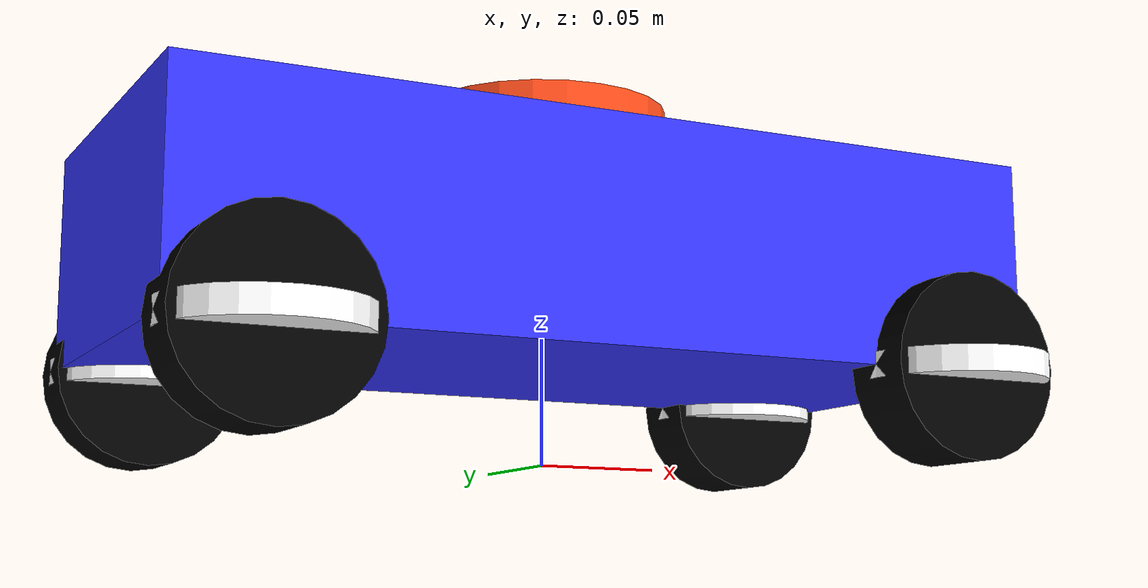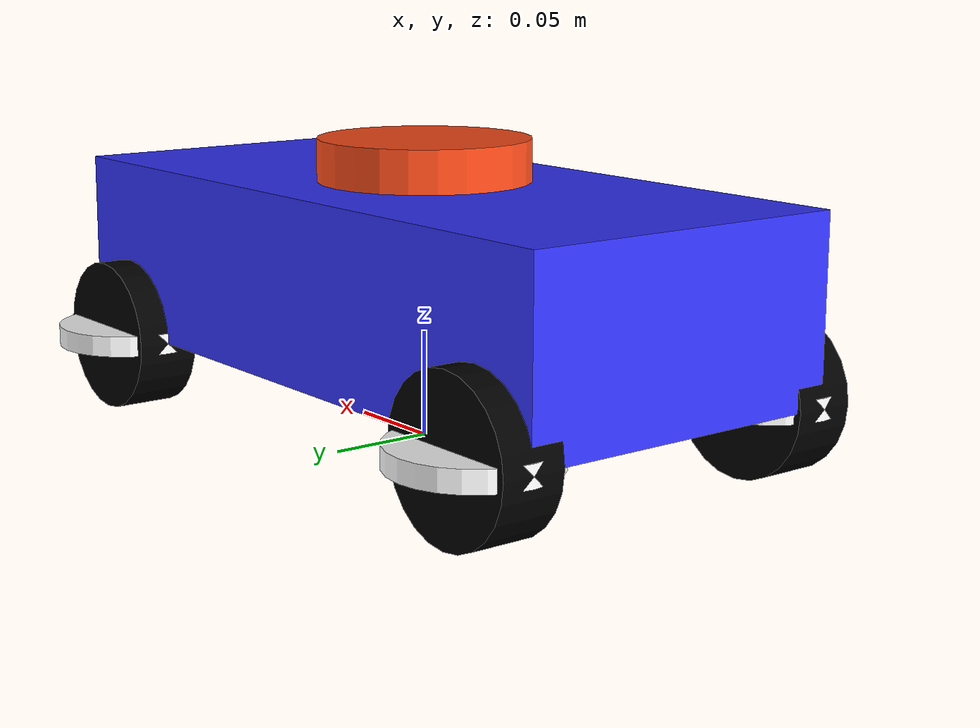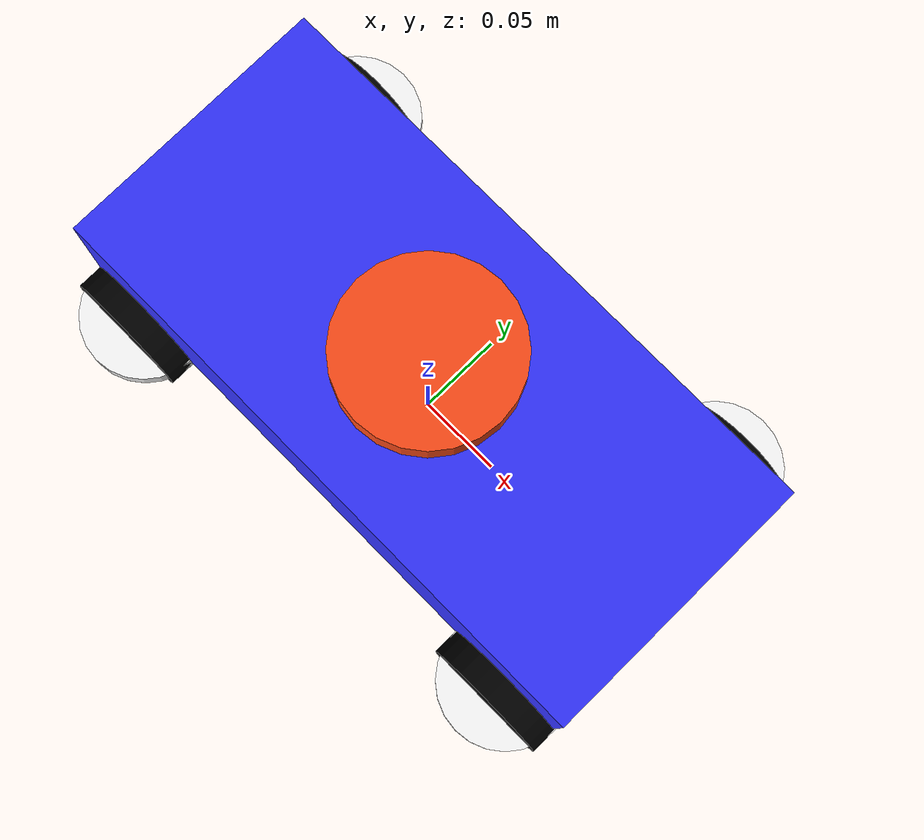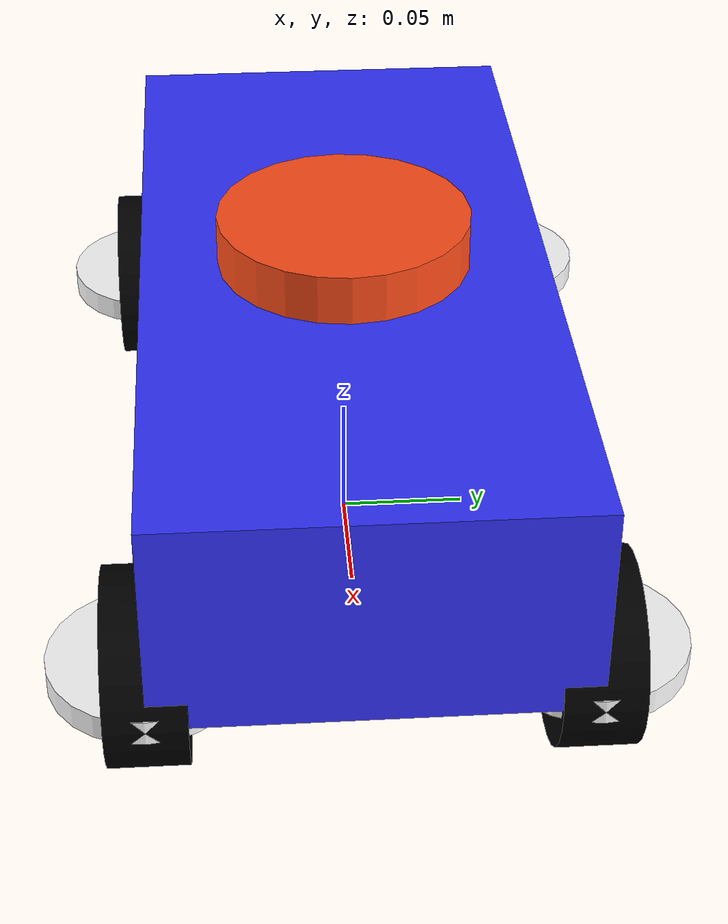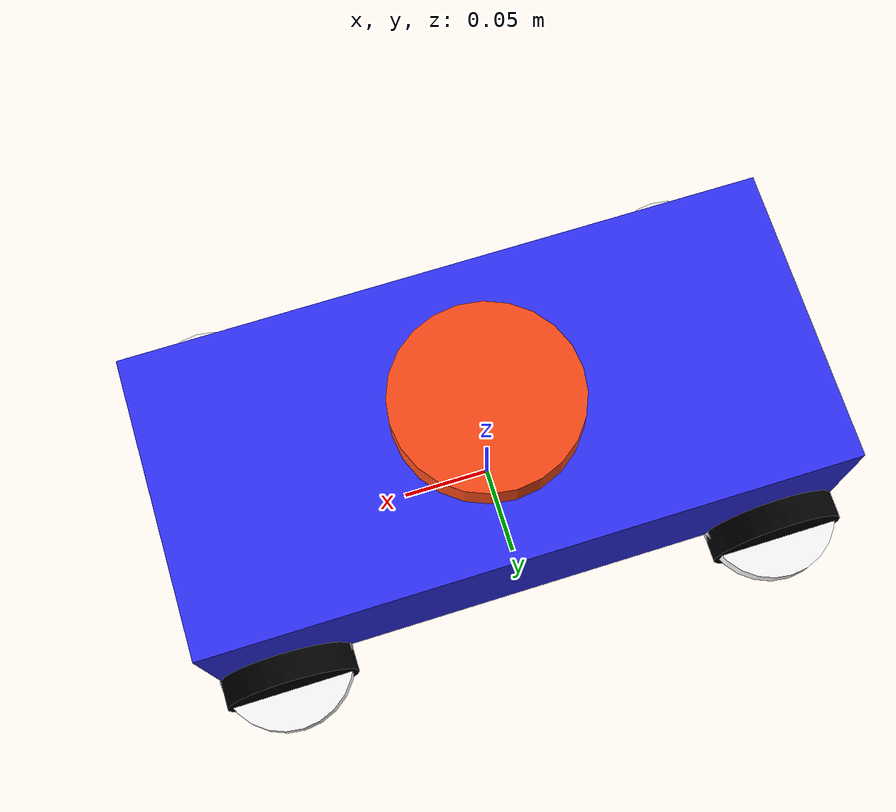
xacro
<robot name="acker" xmlns:xacro="http://ros.org/wiki/xacro">

    <xacro:property name="width" value="0.161" />
    <xacro:property name="length" value="0.347" />
    <xacro:property name="height" value="0.0855" />
    <xacro:property name="wheel_diameter" value="0.073" />
    <xacro:property name="wheel_thickness" value="0.03" />
    <xacro:property name="pi" value="3.141592" />

   <material name="white">
        <color rgba= "1 1 1 1"/>
    </material>

    <material name="orange">
        <color rgba= "1 0.3 0.1 1"/>
    </material>

    <material name="blue">
        <color rgba= "0.2 0.2 1 1"/>
    </material>

    <material name="black">
        <color rgba= "0 0 0 1"/>
    </material>

    <link name="base_link">
    </link>

    <joint name="base_footprint_joint" type="fixed">
        <parent link="base_link"/>
        <child link="base_footprint"/>
        <origin xyz="0 0 0"/>
    </joint>

    <!-- Example link -->
    <link name="base_footprint">
    </link>

    <link name="chassis">
        <visual>
            <geometry>
                <box size="${length} ${width} ${height}"/>
            </geometry>
            <material name="blue"/>
        </visual>
        <collision>
            <geometry>
                <box size="${length} ${width} ${height}"/>
            </geometry>
        </collision>
        <inertial>
            <mass value="600"/>
            <inertia ixx="84.22" ixy="0.576" ixz="5.383" iyy="102.589" iyz="2.736" izz="43.303"/>
        </inertial>
    </link>
    <gazebo reference="chassis">
        <material>Gazebo/Blue</material>
    </gazebo>

    <joint name="base_link_to_chasis" type="fixed">
        <parent link="base_link"/>
        <child link="chassis"/>
        <origin rpy="0 0 0" xyz="0 0 ${(height/2)+(wheel_diameter/2)}"/>
    </joint>

    <!-- laser_frame -->
    <link name="laser_frame">
        <visual>
            <geometry>
                <cylinder radius="0.05" length="0.04"/>
            </geometry>
            <material name="orange"/>
        </visual>
        <collision>
            <geometry>
                <cylinder radius="0.05" length="0.04"/>
            </geometry>
        </collision>
        <inertial>
            <mass value="1"/>
            <inertia ixx="1.0" ixy="0.0" ixz="0.0" iyy="1.0" iyz="0.0" izz="1.0"/>
        </inertial>
    </link>

    <joint name="laser_joint" type="fixed">
        <parent link="chassis"/>
        <child link="laser_frame"/>
        <origin xyz="0 0 ${(height/2)}" rpy="0 0 0"/>
    </joint>

    <!--Mounts-->
    <xacro:macro name="wheel" params="prefix suffix x y mode">

        <link name="${prefix}_${suffix}_mount">
            <visual>
                <origin xyz="0 0 0" rpy="0 0 0" />
                <geometry>
                    <cylinder radius="${wheel_diameter/2}" length="0.01"/>
                </geometry>
                <material name="white"/>
            </visual>
            <collision>
                <origin xyz="0 0 0" rpy="0 0 0" />
                <geometry>
                    <cylinder radius="${wheel_diameter/2}" length="0.01"/>
                </geometry>
            </collision>
            <inertial>
                <mass value="1"/>
                <inertia ixx="1.0" ixy="0.0" ixz="0.0" iyy="1.0" iyz="0.0" izz="1.0"/>
            </inertial>
        </link>
        <joint name="${prefix}_${suffix}_mount_joint" type="${mode}">
            <axis xyz="0 0 1" rpy="0 0 0" />
            <parent link="chassis"/>
            <child link="${prefix}_${suffix}_mount"/>
            <origin xyz="${x} ${y} -${height/2}" rpy="0 0 0"/>
        </joint>

        <link name="${prefix}_${suffix}_wheel">
            <visual>
                <origin xyz="0 0 0" rpy="${pi/2} 0 0" />
                <geometry>
                    <cylinder radius="${wheel_diameter/2}" length="${wheel_thickness}"/>
                </geometry>
                <material name="black"/>
            </visual>
            <collision>
                <origin xyz="0 0 0" rpy="${pi/2} 0 0" />
                <geometry>
                    <cylinder radius="${wheel_diameter/2}" length="${wheel_thickness}"/>
                </geometry>
            </collision>
            <inertial>
                <mass value="1"/>
                <inertia ixx="1.0" ixy="0.0" ixz="0.0" iyy="1.0" iyz="0.0" izz="1.0"/>
            </inertial>
        </link>
        <gazebo reference="${prefix}_${suffix}_wheel">
            <material>Gazebo/Black</material>
        </gazebo>
        <joint name="${prefix}_${suffix}_wheel_joint" type="continuous">
            <axis xyz="0 1 0" rpy="0 0 0" />
            <parent link="${prefix}_${suffix}_mount"/>
            <child link="${prefix}_${suffix}_wheel"/>
            <origin xyz="0 0 0" rpy="0 0 0"/>
        </joint>

    </xacro:macro>
    <xacro:wheel prefix="front" suffix="left" x="0.1388" y="0.0805" mode="continuous"/>
    <xacro:wheel prefix="front" suffix="right" x="0.1388" y="-0.0805" mode="continuous"/>
    <xacro:wheel prefix="back" suffix="left" x="-0.1388" y="0.0805" mode="fixed"/>
    <xacro:wheel prefix="back" suffix="right" x="-0.1388" y="-0.0805" mode="fixed"/>

    <gazebo>
        <plugin name="gertrud_joint_state" filename="libgazebo_ros_joint_state_publisher.so">
            <ros>
            </ros>
            <update_rate>30</update_rate>
            <joint_name>front_left_wheel_joint</joint_name>
            <joint_name>front_right_wheel_joint</joint_name>
            <joint_name>back_left_wheel_joint</joint_name>
            <joint_name>back_right_wheel_joint</joint_name>
            <joint_name>front_left_mount_joint</joint_name>
            <joint_name>front_right_mount_joint</joint_name>
            <joint_name>back_left_mount_joint</joint_name>
            <joint_name>back_right_mount_joint</joint_name>
        </plugin>
        <plugin name="gazebo_ros_joint_pose_trajectory"
                filename="libgazebo_ros_joint_pose_trajectory.so">
            <ros>
            </ros>
            <update_rate>2</update_rate>
        </plugin>
    </gazebo>

    <gazebo reference="laser_frame">
        <material>Gazebo/Red</material>
        <sensor name="laser" type="ray">
            <pose>0 0 0 0 0 0</pose>
            <visualize>false</visualize>
            <update_rate>10</update_rate>

            <ray>
                <scan>
                    <horizontal>
						<!--samples> is the number of simulated lidar rays to generate per complete laser sweep cycle.-->
                        <samples>360</samples>
						<!--resolution>: this number is multiplied by samples to determine the number range data points.-->
                        <resolution>1</resolution>
						<min_angle>-3.14</min_angle>
                        <max_angle>3.14</max_angle>
                    </horizontal>
                </scan>
                <range>
                    <min>0.3</min>
                    <max>30</max>
                    <resolution>0.01</resolution>
                </range>
            </ray>
            <plugin name="laser_controller" filename="libgazebo_ros_ray_sensor.so">
                <ros>
                    <remapping>~/out:=scan</remapping>
                </ros>
                <output_type>sensor_msgs/LaserScan</output_type>
                <frame_name>laser_frame</frame_name>
            </plugin>
        </sensor>
    </gazebo>

    <gazebo>

        <plugin name='ackermann_drive' filename='libgazebo_ros_ackermann_drive.so'>

            <update_rate>100.0</update_rate>

            <!-- wheels -->
            <front_left_joint>front_left_wheel_joint</front_left_joint>
            <front_right_joint>front_right_wheel_joint</front_right_joint>
            <rear_left_joint>back_left_wheel_joint</rear_left_joint>
            <rear_right_joint>back_right_wheel_joint</rear_right_joint>
            <left_steering_joint>front_left_mount_joint</left_steering_joint>
            <right_steering_joint>front_right_mount_joint</right_steering_joint>

            <!-- Max absolute steer angle for tyre in radians-->
            <!-- Any cmd_vel angular z greater than this would be capped -->
            <max_steer>0.6458</max_steer>

            <!-- Max absolute steering angle of steering wheel -->
            <max_steering_angle>7.85</max_steering_angle>

            <!-- Max absolute linear speed in m/s -->
            <max_speed>20</max_speed>

            <!-- PID tuning -->
            <left_steering_pid_gain>5000 1000 500</left_steering_pid_gain>
            <left_steering_i_range>0 0</left_steering_i_range>
            <right_steering_pid_gain>5000 1000 500</right_steering_pid_gain>
            <right_steering_i_range>0 0</right_steering_i_range>
            <linear_velocity_pid_gain>10 5 5</linear_velocity_pid_gain>
            <linear_velocity_i_range>0 0</linear_velocity_i_range>

            <!-- output -->
            <publish_odom>true</publish_odom>
            <publish_odom_tf>true</publish_odom_tf>
            <publish_wheel_tf>true</publish_wheel_tf>
            <publish_distance>true</publish_distance>

            <odometry_frame>odom</odometry_frame>
            <robot_base_frame>base_link</robot_base_frame>

        </plugin>
    </gazebo>

</robot>
